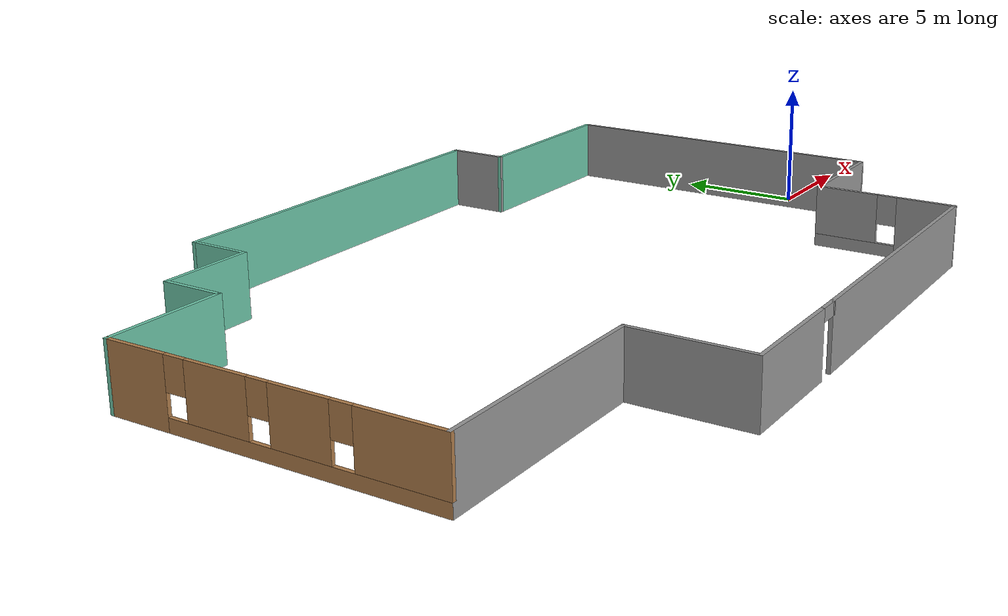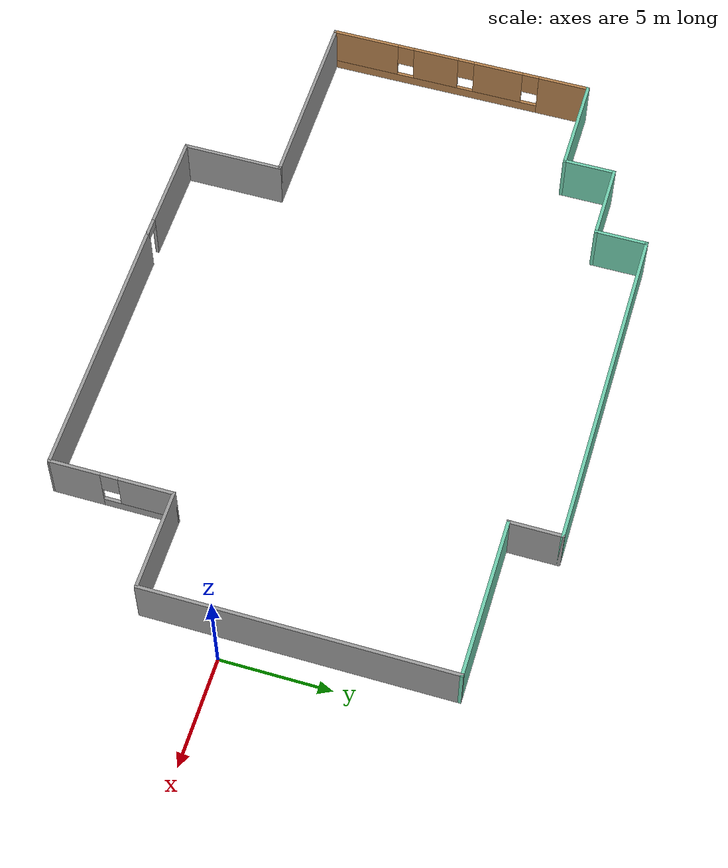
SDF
<?xml version='1.0'?>
<sdf version='1.6'>
  <model name='MyBuilding'>
    <pose frame=''>-16.2797 1.48547 0 0 -0 0</pose>
    <link name='Wall_0'>
      <collision name='Wall_0_Collision'>
        <geometry>
          <box>
            <size>12.7504 0.15 2.5</size>
          </box>
        </geometry>
        <pose frame=''>0 0 1.25 0 -0 0</pose>
      </collision>
      <visual name='Wall_0_Visual'>
        <pose frame=''>0 0 1.25 0 -0 0</pose>
        <geometry>
          <box>
            <size>12.7504 0.15 2.5</size>
          </box>
        </geometry>
        <material>
          <script>
            <uri>file://media/materials/scripts/gazebo.material</uri>
            <name>Gazebo/Grey</name>
          </script>
          <ambient>1 1 1 1</ambient>
        </material>
        <meta>
          <layer>0</layer>
        </meta>
      </visual>
      <pose frame=''>4.29535 -10.8997 0 0 -0 0.007936</pose>
    </link>
    <link name='Wall_1'>
      <pose frame=''>10.5953 -8.0497 0 0 -0 1.5708</pose>
      <visual name='Wall_1_Visual_0'>
        <pose frame=''>-1.68425 0 1.25 0 -0 0</pose>
        <geometry>
          <box>
            <size>2.3815 0.15 2.5</size>
          </box>
        </geometry>
        <material>
          <script>
            <uri>file://media/materials/scripts/gazebo.material</uri>
            <name>Gazebo/Grey</name>
          </script>
          <ambient>1 1 1 1</ambient>
        </material>
        <meta>
          <layer>0</layer>
        </meta>
      </visual>
      <collision name='Wall_1_Collision_0'>
        <geometry>
          <box>
            <size>2.3815 0.15 2.5</size>
          </box>
        </geometry>
        <pose frame=''>-1.68425 0 1.25 0 -0 0</pose>
      </collision>
      <visual name='Wall_1_Visual_1'>
        <pose frame=''>1.19075 0 0.25 0 -0 0</pose>
        <geometry>
          <box>
            <size>3.3685 0.15 0.5</size>
          </box>
        </geometry>
        <material>
          <script>
            <uri>file://media/materials/scripts/gazebo.material</uri>
            <name>Gazebo/Grey</name>
          </script>
          <ambient>1 1 1 1</ambient>
        </material>
        <meta>
          <layer>0</layer>
        </meta>
      </visual>
      <collision name='Wall_1_Collision_1'>
        <geometry>
          <box>
            <size>3.3685 0.15 0.5</size>
          </box>
        </geometry>
        <pose frame=''>1.19075 0 0.25 0 -0 0</pose>
      </collision>
      <visual name='Wall_1_Visual_2'>
        <pose frame=''>1.59075 0 1.5 0 -0 0</pose>
        <geometry>
          <box>
            <size>2.5685 0.15 2</size>
          </box>
        </geometry>
        <material>
          <script>
            <uri>file://media/materials/scripts/gazebo.material</uri>
            <name>Gazebo/Grey</name>
          </script>
          <ambient>1 1 1 1</ambient>
        </material>
        <meta>
          <layer>0</layer>
        </meta>
      </visual>
      <collision name='Wall_1_Collision_2'>
        <geometry>
          <box>
            <size>2.5685 0.15 2</size>
          </box>
        </geometry>
        <pose frame=''>1.59075 0 1.5 0 -0 0</pose>
      </collision>
      <visual name='Wall_1_Visual_3'>
        <pose frame=''>-0.093498 0 1.9 0 -0 0</pose>
        <geometry>
          <box>
            <size>0.8 0.15 1.2</size>
          </box>
        </geometry>
        <material>
          <script>
            <uri>file://media/materials/scripts/gazebo.material</uri>
            <name>Gazebo/Grey</name>
          </script>
          <ambient>1 1 1 1</ambient>
        </material>
        <meta>
          <layer>0</layer>
        </meta>
      </visual>
      <collision name='Wall_1_Collision_3'>
        <geometry>
          <box>
            <size>0.8 0.15 1.2</size>
          </box>
        </geometry>
        <pose frame=''>-0.093498 0 1.9 0 -0 0</pose>
      </collision>
    </link>
    <link name='Wall_10'>
      <collision name='Wall_10_Collision'>
        <geometry>
          <box>
            <size>4.75 0.15 2.5</size>
          </box>
        </geometry>
        <pose frame=''>0 0 1.25 0 -0 0</pose>
      </collision>
      <visual name='Wall_10_Visual'>
        <pose frame=''>0 0 1.25 0 -0 0</pose>
        <geometry>
          <box>
            <size>4.75 0.15 2.5</size>
          </box>
        </geometry>
        <material>
          <script>
            <uri>file://media/materials/scripts/gazebo.material</uri>
            <name>Gazebo/Grey</name>
          </script>
          <ambient>0.435294 0.796078 0.67451 1</ambient>
        </material>
        <meta>
          <layer>0</layer>
        </meta>
      </visual>
      <pose frame=''>-13.9047 6.2503 0 0 -0 3.14159</pose>
    </link>
    <link name='Wall_11'>
      <pose frame=''>-16.2047 -0.049703 0 0 -0 -1.5708</pose>
      <visual name='Wall_11_Visual_0'>
        <pose frame=''>-5.13562 0 1.25 0 -0 0</pose>
        <geometry>
          <box>
            <size>2.47877 0.15 2.5</size>
          </box>
        </geometry>
        <material>
          <script>
            <uri>file://media/materials/scripts/gazebo.material</uri>
            <name>Gazebo/Wood</name>
          </script>
          <ambient>1 1 1 1</ambient>
        </material>
        <meta>
          <layer>0</layer>
        </meta>
      </visual>
      <collision name='Wall_11_Collision_0'>
        <geometry>
          <box>
            <size>2.47877 0.15 2.5</size>
          </box>
        </geometry>
        <pose frame=''>-5.13562 0 1.25 0 -0 0</pose>
      </collision>
      <visual name='Wall_11_Visual_1'>
        <pose frame=''>1.23938 0 0.25 0 -0 0</pose>
        <geometry>
          <box>
            <size>10.2712 0.15 0.5</size>
          </box>
        </geometry>
        <material>
          <script>
            <uri>file://media/materials/scripts/gazebo.material</uri>
            <name>Gazebo/Wood</name>
          </script>
          <ambient>1 1 1 1</ambient>
        </material>
        <meta>
          <layer>0</layer>
        </meta>
      </visual>
      <collision name='Wall_11_Collision_1'>
        <geometry>
          <box>
            <size>10.2712 0.15 0.5</size>
          </box>
        </geometry>
        <pose frame=''>1.23938 0 0.25 0 -0 0</pose>
      </collision>
      <visual name='Wall_11_Visual_2'>
        <pose frame=''>-1.89651 0 1.5 0 -0 0</pose>
        <geometry>
          <box>
            <size>2.39945 0.15 2</size>
          </box>
        </geometry>
        <material>
          <script>
            <uri>file://media/materials/scripts/gazebo.material</uri>
            <name>Gazebo/Wood</name>
          </script>
          <ambient>1 1 1 1</ambient>
        </material>
        <meta>
          <layer>0</layer>
        </meta>
      </visual>
      <collision name='Wall_11_Collision_2'>
        <geometry>
          <box>
            <size>2.39945 0.15 2</size>
          </box>
        </geometry>
        <pose frame=''>-1.89651 0 1.5 0 -0 0</pose>
      </collision>
      <visual name='Wall_11_Visual_3'>
        <pose frame=''>1.21065 0 1.5 0 -0 0</pose>
        <geometry>
          <box>
            <size>2.21487 0.15 2</size>
          </box>
        </geometry>
        <material>
          <script>
            <uri>file://media/materials/scripts/gazebo.material</uri>
            <name>Gazebo/Wood</name>
          </script>
          <ambient>1 1 1 1</ambient>
        </material>
        <meta>
          <layer>0</layer>
        </meta>
      </visual>
      <collision name='Wall_11_Collision_3'>
        <geometry>
          <box>
            <size>2.21487 0.15 2</size>
          </box>
        </geometry>
        <pose frame=''>1.21065 0 1.5 0 -0 0</pose>
      </collision>
      <visual name='Wall_11_Visual_4'>
        <pose frame=''>4.74654 0 1.5 0 -0 0</pose>
        <geometry>
          <box>
            <size>3.25692 0.15 2</size>
          </box>
        </geometry>
        <material>
          <script>
            <uri>file://media/materials/scripts/gazebo.material</uri>
            <name>Gazebo/Wood</name>
          </script>
          <ambient>1 1 1 1</ambient>
        </material>
        <meta>
          <layer>0</layer>
        </meta>
      </visual>
      <collision name='Wall_11_Collision_4'>
        <geometry>
          <box>
            <size>3.25692 0.15 2</size>
          </box>
        </geometry>
        <pose frame=''>4.74654 0 1.5 0 -0 0</pose>
      </collision>
      <visual name='Wall_11_Visual_5'>
        <pose frame=''>-3.49623 0 1.9 0 -0 0</pose>
        <geometry>
          <box>
            <size>0.8 0.15 1.2</size>
          </box>
        </geometry>
        <material>
          <script>
            <uri>file://media/materials/scripts/gazebo.material</uri>
            <name>Gazebo/Wood</name>
          </script>
          <ambient>1 1 1 1</ambient>
        </material>
        <meta>
          <layer>0</layer>
        </meta>
      </visual>
      <collision name='Wall_11_Collision_5'>
        <geometry>
          <box>
            <size>0.8 0.15 1.2</size>
          </box>
        </geometry>
        <pose frame=''>-3.49623 0 1.9 0 -0 0</pose>
      </collision>
      <visual name='Wall_11_Visual_6'>
        <pose frame=''>-0.296785 0 1.9 0 -0 0</pose>
        <geometry>
          <box>
            <size>0.8 0.15 1.2</size>
          </box>
        </geometry>
        <material>
          <script>
            <uri>file://media/materials/scripts/gazebo.material</uri>
            <name>Gazebo/Wood</name>
          </script>
          <ambient>1 1 1 1</ambient>
        </material>
        <meta>
          <layer>0</layer>
        </meta>
      </visual>
      <collision name='Wall_11_Collision_6'>
        <geometry>
          <box>
            <size>0.8 0.15 1.2</size>
          </box>
        </geometry>
        <pose frame=''>-0.296785 0 1.9 0 -0 0</pose>
      </collision>
      <visual name='Wall_11_Visual_7'>
        <pose frame=''>2.71808 0 1.9 0 -0 0</pose>
        <geometry>
          <box>
            <size>0.8 0.15 1.2</size>
          </box>
        </geometry>
        <material>
          <script>
            <uri>file://media/materials/scripts/gazebo.material</uri>
            <name>Gazebo/Wood</name>
          </script>
          <ambient>1 1 1 1</ambient>
        </material>
        <meta>
          <layer>0</layer>
        </meta>
      </visual>
      <collision name='Wall_11_Collision_7'>
        <geometry>
          <box>
            <size>0.8 0.15 1.2</size>
          </box>
        </geometry>
        <pose frame=''>2.71808 0 1.9 0 -0 0</pose>
      </collision>
    </link>
    <link name='Wall_12'>
      <collision name='Wall_12_Collision'>
        <geometry>
          <box>
            <size>9 0.15 2.5</size>
          </box>
        </geometry>
        <pose frame=''>0 0 1.25 0 -0 0</pose>
      </collision>
      <visual name='Wall_12_Visual'>
        <pose frame=''>0 0 1.25 0 -0 0</pose>
        <geometry>
          <box>
            <size>9 0.15 2.5</size>
          </box>
        </geometry>
        <material>
          <script>
            <uri>file://media/materials/scripts/gazebo.material</uri>
            <name>Gazebo/Grey</name>
          </script>
          <ambient>1 1 1 1</ambient>
        </material>
        <meta>
          <layer>0</layer>
        </meta>
      </visual>
      <pose frame=''>-11.7797 -6.3497 0 0 -0 0</pose>
    </link>
    <link name='Wall_13'>
      <collision name='Wall_13_Collision'>
        <geometry>
          <box>
            <size>4.75 0.15 2.5</size>
          </box>
        </geometry>
        <pose frame=''>0 0 1.25 0 -0 0</pose>
      </collision>
      <visual name='Wall_13_Visual'>
        <pose frame=''>0 0 1.25 0 -0 0</pose>
        <geometry>
          <box>
            <size>4.75 0.15 2.5</size>
          </box>
        </geometry>
        <material>
          <script>
            <uri>file://media/materials/scripts/gazebo.material</uri>
            <name>Gazebo/Grey</name>
          </script>
          <ambient>1 1 1 1</ambient>
        </material>
        <meta>
          <layer>0</layer>
        </meta>
      </visual>
      <pose frame=''>-7.35465 -8.6497 0 0 -0 -1.5708</pose>
    </link>
    <link name='Wall_14'>
      <pose frame=''>-4.67965 -10.9497 0 0 -0 0</pose>
      <visual name='Wall_14_Visual_0'>
        <pose frame=''>-0.434916 0 1.25 0 -0 0</pose>
        <geometry>
          <box>
            <size>4.63017 0.15 2.5</size>
          </box>
        </geometry>
        <material>
          <script>
            <uri>file://media/materials/scripts/gazebo.material</uri>
            <name>Gazebo/Grey</name>
          </script>
          <ambient>1 1 1 1</ambient>
        </material>
        <meta>
          <layer>0</layer>
        </meta>
      </visual>
      <collision name='Wall_14_Collision_0'>
        <geometry>
          <box>
            <size>4.63017 0.15 2.5</size>
          </box>
        </geometry>
        <pose frame=''>-0.434916 0 1.25 0 -0 0</pose>
      </collision>
      <visual name='Wall_14_Visual_1'>
        <pose frame=''>2.31508 0 2.25 0 -0 0</pose>
        <geometry>
          <box>
            <size>0.869832 0.15 0.5</size>
          </box>
        </geometry>
        <material>
          <script>
            <uri>file://media/materials/scripts/gazebo.material</uri>
            <name>Gazebo/Grey</name>
          </script>
          <ambient>1 1 1 1</ambient>
        </material>
        <meta>
          <layer>0</layer>
        </meta>
      </visual>
      <collision name='Wall_14_Collision_1'>
        <geometry>
          <box>
            <size>0.869832 0.15 0.5</size>
          </box>
        </geometry>
        <pose frame=''>2.31508 0 2.25 0 -0 0</pose>
      </collision>
    </link>
    <link name='Wall_2'>
      <collision name='Wall_2_Collision'>
        <geometry>
          <box>
            <size>4.75 0.15 2.5</size>
          </box>
        </geometry>
        <pose frame=''>0 0 1.25 0 -0 0</pose>
      </collision>
      <visual name='Wall_2_Visual'>
        <pose frame=''>0 0 1.25 0 -0 0</pose>
        <geometry>
          <box>
            <size>4.75 0.15 2.5</size>
          </box>
        </geometry>
        <material>
          <script>
            <uri>file://media/materials/scripts/gazebo.material</uri>
            <name>Gazebo/Grey</name>
          </script>
          <ambient>1 1 1 1</ambient>
        </material>
        <meta>
          <layer>0</layer>
        </meta>
      </visual>
      <pose frame=''>12.8953 -5.2497 0 0 -0 0</pose>
    </link>
    <link name='Wall_3'>
      <collision name='Wall_3_Collision'>
        <geometry>
          <box>
            <size>14 0.15 2.5</size>
          </box>
        </geometry>
        <pose frame=''>0 0 1.25 0 -0 0</pose>
      </collision>
      <visual name='Wall_3_Visual'>
        <pose frame=''>0 0 1.25 0 -0 0</pose>
        <geometry>
          <box>
            <size>14 0.15 2.5</size>
          </box>
        </geometry>
        <material>
          <script>
            <uri>file://media/materials/scripts/gazebo.material</uri>
            <name>Gazebo/Grey</name>
          </script>
          <ambient>1 1 1 1</ambient>
        </material>
        <meta>
          <layer>0</layer>
        </meta>
      </visual>
      <pose frame=''>15.1953 1.6753 0 0 -0 1.5708</pose>
    </link>
    <link name='Wall_4'>
      <collision name='Wall_4_Collision'>
        <geometry>
          <box>
            <size>7.5 0.15 2.5</size>
          </box>
        </geometry>
        <pose frame=''>0 0 1.25 0 -0 0</pose>
      </collision>
      <visual name='Wall_4_Visual'>
        <pose frame=''>0 0 1.25 0 -0 0</pose>
        <geometry>
          <box>
            <size>7.5 0.15 2.5</size>
          </box>
        </geometry>
        <material>
          <script>
            <uri>file://media/materials/scripts/gazebo.material</uri>
            <name>Gazebo/Grey</name>
          </script>
          <ambient>0.435294 0.796078 0.67451 1</ambient>
        </material>
        <meta>
          <layer>0</layer>
        </meta>
      </visual>
      <pose frame=''>11.5203 8.6003 0 0 -0 3.14159</pose>
    </link>
    <link name='Wall_5'>
      <collision name='Wall_5_Collision'>
        <geometry>
          <box>
            <size>2.5 0.15 2.5</size>
          </box>
        </geometry>
        <pose frame=''>0 0 1.25 0 -0 0</pose>
      </collision>
      <visual name='Wall_5_Visual'>
        <pose frame=''>0 0 1.25 0 -0 0</pose>
        <geometry>
          <box>
            <size>2.5 0.15 2.5</size>
          </box>
        </geometry>
        <material>
          <script>
            <uri>file://media/materials/scripts/gazebo.material</uri>
            <name>Gazebo/Grey</name>
          </script>
          <ambient>1 1 1 1</ambient>
        </material>
        <meta>
          <layer>0</layer>
        </meta>
      </visual>
      <pose frame=''>7.84535 9.7753 0 0 -0 1.5708</pose>
    </link>
    <link name='Wall_6'>
      <collision name='Wall_6_Collision'>
        <geometry>
          <box>
            <size>16 0.15 2.5</size>
          </box>
        </geometry>
        <pose frame=''>0 0 1.25 0 -0 0</pose>
      </collision>
      <visual name='Wall_6_Visual'>
        <pose frame=''>0 0 1.25 0 -0 0</pose>
        <geometry>
          <box>
            <size>16 0.15 2.5</size>
          </box>
        </geometry>
        <material>
          <script>
            <uri>file://media/materials/scripts/gazebo.material</uri>
            <name>Gazebo/Grey</name>
          </script>
          <ambient>0.435294 0.796078 0.67451 1</ambient>
        </material>
        <meta>
          <layer>0</layer>
        </meta>
      </visual>
      <pose frame=''>-0.079653 10.9503 0 0 -0 3.14159</pose>
    </link>
    <link name='Wall_7'>
      <collision name='Wall_7_Collision'>
        <geometry>
          <box>
            <size>2.5 0.15 2.5</size>
          </box>
        </geometry>
        <pose frame=''>0 0 1.25 0 -0 0</pose>
      </collision>
      <visual name='Wall_7_Visual'>
        <pose frame=''>0 0 1.25 0 -0 0</pose>
        <geometry>
          <box>
            <size>2.5 0.15 2.5</size>
          </box>
        </geometry>
        <material>
          <script>
            <uri>file://media/materials/scripts/gazebo.material</uri>
            <name>Gazebo/Grey</name>
          </script>
          <ambient>0.435294 0.796078 0.67451 1</ambient>
        </material>
        <meta>
          <layer>0</layer>
        </meta>
      </visual>
      <pose frame=''>-8.00465 9.7753 0 0 -0 -1.5708</pose>
    </link>
    <link name='Wall_8'>
      <collision name='Wall_8_Collision'>
        <geometry>
          <box>
            <size>3.75 0.15 2.5</size>
          </box>
        </geometry>
        <pose frame=''>0 0 1.25 0 -0 0</pose>
      </collision>
      <visual name='Wall_8_Visual'>
        <pose frame=''>0 0 1.25 0 -0 0</pose>
        <geometry>
          <box>
            <size>3.75 0.15 2.5</size>
          </box>
        </geometry>
        <material>
          <script>
            <uri>file://media/materials/scripts/gazebo.material</uri>
            <name>Gazebo/Grey</name>
          </script>
          <ambient>0.435294 0.796078 0.67451 1</ambient>
        </material>
        <meta>
          <layer>0</layer>
        </meta>
      </visual>
      <pose frame=''>-9.80465 8.6003 0 0 -0 3.14159</pose>
    </link>
    <link name='Wall_9'>
      <collision name='Wall_9_Collision'>
        <geometry>
          <box>
            <size>2.5 0.15 2.5</size>
          </box>
        </geometry>
        <pose frame=''>0 0 1.25 0 -0 0</pose>
      </collision>
      <visual name='Wall_9_Visual'>
        <pose frame=''>0 0 1.25 0 -0 0</pose>
        <geometry>
          <box>
            <size>2.5 0.15 2.5</size>
          </box>
        </geometry>
        <material>
          <script>
            <uri>file://media/materials/scripts/gazebo.material</uri>
            <name>Gazebo/Grey</name>
          </script>
          <ambient>0.435294 0.796078 0.67451 1</ambient>
        </material>
        <meta>
          <layer>0</layer>
        </meta>
      </visual>
      <pose frame=''>-11.6047 7.4253 0 0 -0 -1.5708</pose>
    </link>
    <static>1</static>
  </model>
</sdf>
